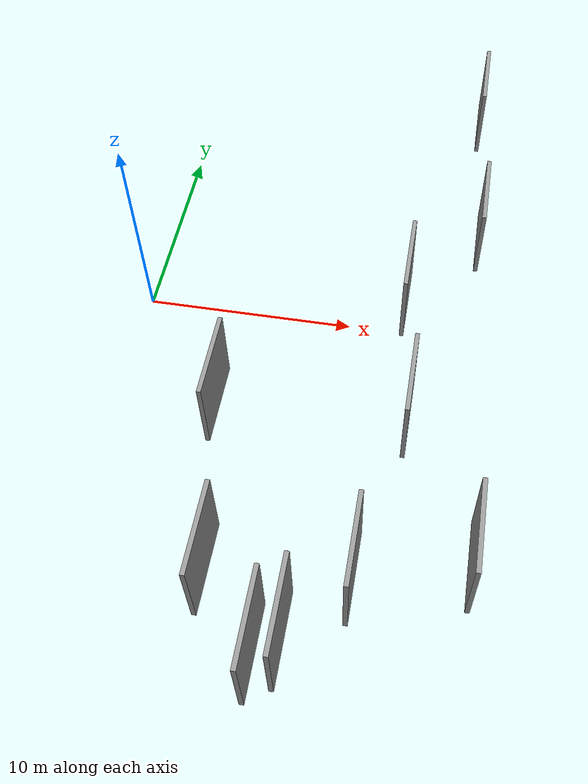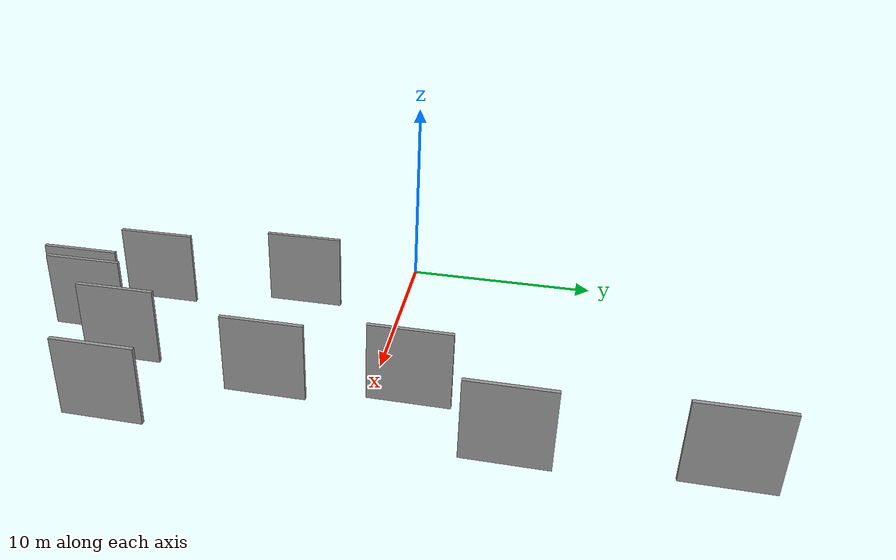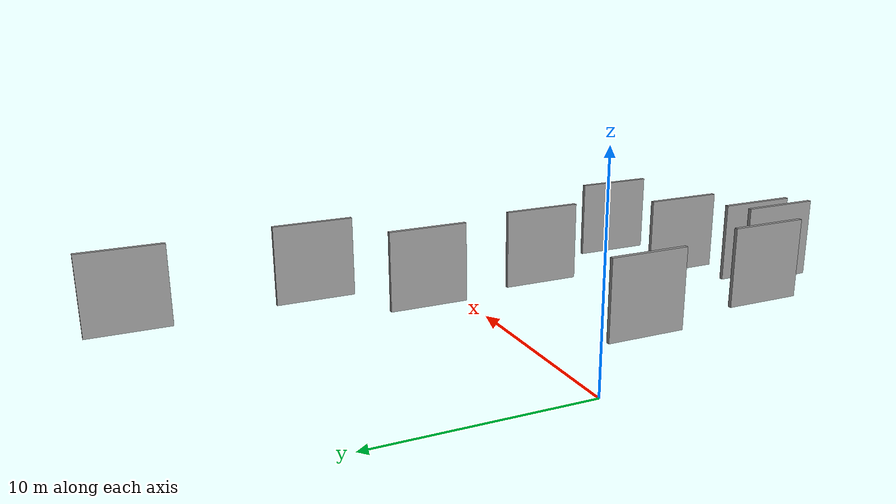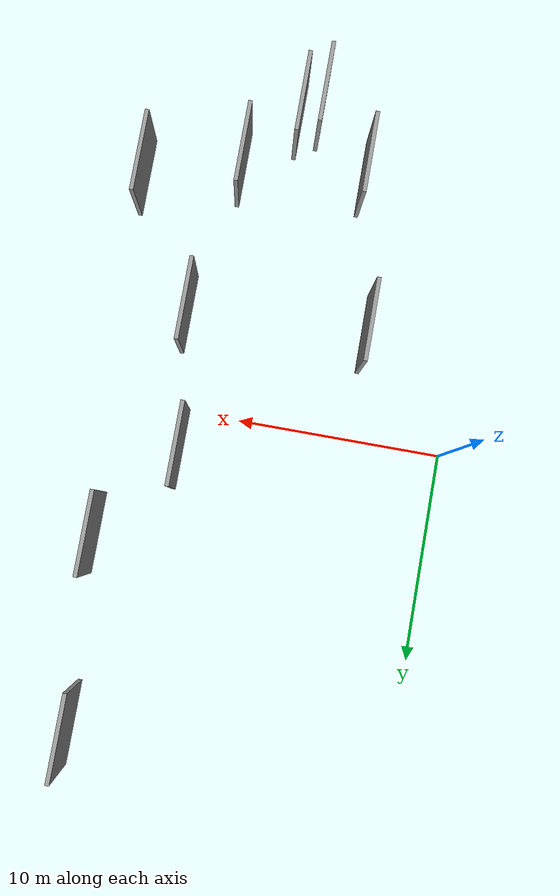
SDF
<sdf version="1.6">
 <world name="default">
  <scene>
   <sky><clouds><speed>12</speed></clouds></sky>
   <ambient>0.4 0.4 0.4 1</ambient>
   <background>0.7 0.7 0.7 1</background>
   <shadows>1</shadows>
  </scene>
  <gravity>0 0 -9.8066</gravity>
  <magnetic_field>6e-06 2.3e-05 -4.2e-05</magnetic_field>
  <physics default="0" name="default_physics" type="ode">
   <ode>
    <solver>
     <type>quick</type>
     <iters>10</iters>
     <sor>1.0</sor>
     <use_dynamic_moi_rescaling>0</use_dynamic_moi_rescaling>
    </solver>
    <constraints>
     <cfm>0</cfm>
     <erp>0.2</erp>
     <contact_max_correcting_vel>100</contact_max_correcting_vel>
     <contact_surface_layer>0.001</contact_surface_layer>
    </constraints>
   </ode>
   <max_step_size>0.004</max_step_size>
   <real_time_factor>1</real_time_factor>
   <real_time_update_rate>250</real_time_update_rate>
  </physics>
  <light name="sun" type="directional">
   <pose>0 0 10 0 0 0</pose>
   <diffuse>0.8 0.8 0.8 1</diffuse>
   <specular>0.2 0.2 0.2 1</specular>
   <attenuation>
    <range>1000</range>
    <constant>0.9</constant>
    <linear>0.01</linear>
    <quadratic>0.001</quadratic>
   </attenuation>
   <direction>-0.5 0.1 -0.9</direction>
  </light>
  <model name="grey_wall_1">
   <static>1</static>
   <pose>15.3023 15.6580 0.0 0.000000 0.000000 1.570796</pose>
   <link name="link">
    <pose>0 0 2.00 0 0 0</pose>
    <collision name="collision"><geometry><box><size>4.00 0.2 4.00</size></box></geometry></collision>
    <visual name="visual">
     <cast_shadows>0</cast_shadows>
     <geometry><box><size>4.00 0.2 4.00</size></box></geometry>
     <material>
      <script>
       <uri>model://grey_wall/materials/scripts</uri>
       <uri>model://grey_wall/materials/textures</uri>
       <name>vrc/grey_wall</name>
      </script>
     </material>
    </visual>
   </link>
  </model>
  <model name="grey_wall_2">
   <static>1</static>
   <pose>5.9965 -13.3219 0.0 0.000000 0.000000 1.570796</pose>
   <link name="link">
    <pose>0 0 2.00 0 0 0</pose>
    <collision name="collision"><geometry><box><size>4.00 0.2 4.00</size></box></geometry></collision>
    <visual name="visual">
     <cast_shadows>0</cast_shadows>
     <geometry><box><size>4.00 0.2 4.00</size></box></geometry>
     <material>
      <script>
       <uri>model://grey_wall/materials/scripts</uri>
       <uri>model://grey_wall/materials/textures</uri>
       <name>vrc/grey_wall</name>
      </script>
     </material>
    </visual>
   </link>
  </model>
  <model name="grey_wall_3">
   <static>1</static>
   <pose>12.0458 -12.7863 0.0 0.000000 0.000000 1.570796</pose>
   <link name="link">
    <pose>0 0 2.00 0 0 0</pose>
    <collision name="collision"><geometry><box><size>4.00 0.2 4.00</size></box></geometry></collision>
    <visual name="visual">
     <cast_shadows>0</cast_shadows>
     <geometry><box><size>4.00 0.2 4.00</size></box></geometry>
     <material>
      <script>
       <uri>model://grey_wall/materials/scripts</uri>
       <uri>model://grey_wall/materials/textures</uri>
       <name>vrc/grey_wall</name>
      </script>
     </material>
    </visual>
   </link>
  </model>
  <model name="grey_wall_4">
   <static>1</static>
   <pose>4.6317 -5.3866 0.0 0.000000 0.000000 1.570796</pose>
   <link name="link">
    <pose>0 0 2.00 0 0 0</pose>
    <collision name="collision"><geometry><box><size>4.00 0.2 4.00</size></box></geometry></collision>
    <visual name="visual">
     <cast_shadows>0</cast_shadows>
     <geometry><box><size>4.00 0.2 4.00</size></box></geometry>
     <material>
      <script>
       <uri>model://grey_wall/materials/scripts</uri>
       <uri>model://grey_wall/materials/textures</uri>
       <name>vrc/grey_wall</name>
      </script>
     </material>
    </visual>
   </link>
  </model>
  <model name="grey_wall_5">
   <static>1</static>
   <pose>8.6333 -16.4076 0.0 0.000000 0.000000 1.570796</pose>
   <link name="link">
    <pose>0 0 2.00 0 0 0</pose>
    <collision name="collision"><geometry><box><size>4.00 0.2 4.00</size></box></geometry></collision>
    <visual name="visual">
     <cast_shadows>0</cast_shadows>
     <geometry><box><size>4.00 0.2 4.00</size></box></geometry>
     <material>
      <script>
       <uri>model://grey_wall/materials/scripts</uri>
       <uri>model://grey_wall/materials/textures</uri>
       <name>vrc/grey_wall</name>
      </script>
     </material>
    </visual>
   </link>
  </model>
  <model name="grey_wall_6">
   <static>1</static>
   <pose>12.5728 1.8758 0.0 0.000000 0.000000 1.570796</pose>
   <link name="link">
    <pose>0 0 2.00 0 0 0</pose>
    <collision name="collision"><geometry><box><size>4.00 0.2 4.00</size></box></geometry></collision>
    <visual name="visual">
     <cast_shadows>0</cast_shadows>
     <geometry><box><size>4.00 0.2 4.00</size></box></geometry>
     <material>
      <script>
       <uri>model://grey_wall/materials/scripts</uri>
       <uri>model://grey_wall/materials/textures</uri>
       <name>vrc/grey_wall</name>
      </script>
     </material>
    </visual>
   </link>
  </model>
  <model name="grey_wall_7">
   <static>1</static>
   <pose>16.8034 -11.4900 0.0 0.000000 0.000000 1.570796</pose>
   <link name="link">
    <pose>0 0 2.00 0 0 0</pose>
    <collision name="collision"><geometry><box><size>4.00 0.2 4.00</size></box></geometry></collision>
    <visual name="visual">
     <cast_shadows>0</cast_shadows>
     <geometry><box><size>4.00 0.2 4.00</size></box></geometry>
     <material>
      <script>
       <uri>model://grey_wall/materials/scripts</uri>
       <uri>model://grey_wall/materials/textures</uri>
       <name>vrc/grey_wall</name>
      </script>
     </material>
    </visual>
   </link>
  </model>
  <model name="grey_wall_8">
   <static>1</static>
   <pose>15.8659 6.6065 0.0 0.000000 0.000000 1.570796</pose>
   <link name="link">
    <pose>0 0 2.00 0 0 0</pose>
    <collision name="collision"><geometry><box><size>4.00 0.2 4.00</size></box></geometry></collision>
    <visual name="visual">
     <cast_shadows>0</cast_shadows>
     <geometry><box><size>4.00 0.2 4.00</size></box></geometry>
     <material>
      <script>
       <uri>model://grey_wall/materials/scripts</uri>
       <uri>model://grey_wall/materials/textures</uri>
       <name>vrc/grey_wall</name>
      </script>
     </material>
    </visual>
   </link>
  </model>
  <model name="grey_wall_9">
   <static>1</static>
   <pose>13.4087 -4.8617 0.0 0.000000 0.000000 1.570796</pose>
   <link name="link">
    <pose>0 0 2.00 0 0 0</pose>
    <collision name="collision"><geometry><box><size>4.00 0.2 4.00</size></box></geometry></collision>
    <visual name="visual">
     <cast_shadows>0</cast_shadows>
     <geometry><box><size>4.00 0.2 4.00</size></box></geometry>
     <material>
      <script>
       <uri>model://grey_wall/materials/scripts</uri>
       <uri>model://grey_wall/materials/textures</uri>
       <name>vrc/grey_wall</name>
      </script>
     </material>
    </visual>
   </link>
  </model>
  <model name="grey_wall_10">
   <static>1</static>
   <pose>9.6468 -15.7495 0.0 0.000000 0.000000 1.570796</pose>
   <link name="link">
    <pose>0 0 2.00 0 0 0</pose>
    <collision name="collision"><geometry><box><size>4.00 0.2 4.00</size></box></geometry></collision>
    <visual name="visual">
     <cast_shadows>0</cast_shadows>
     <geometry><box><size>4.00 0.2 4.00</size></box></geometry>
     <material>
      <script>
       <uri>model://grey_wall/materials/scripts</uri>
       <uri>model://grey_wall/materials/textures</uri>
       <name>vrc/grey_wall</name>
      </script>
     </material>
    </visual>
   </link>
  </model>
 </world>
</sdf>
